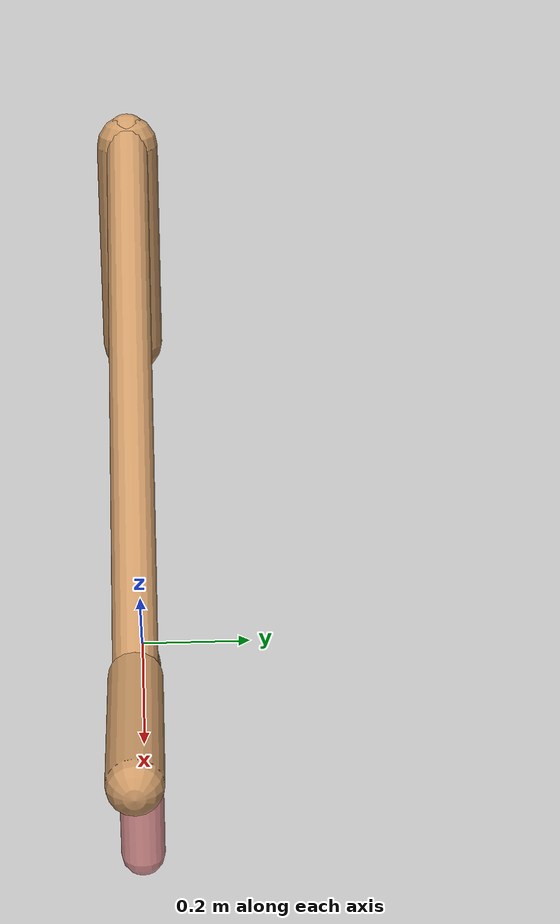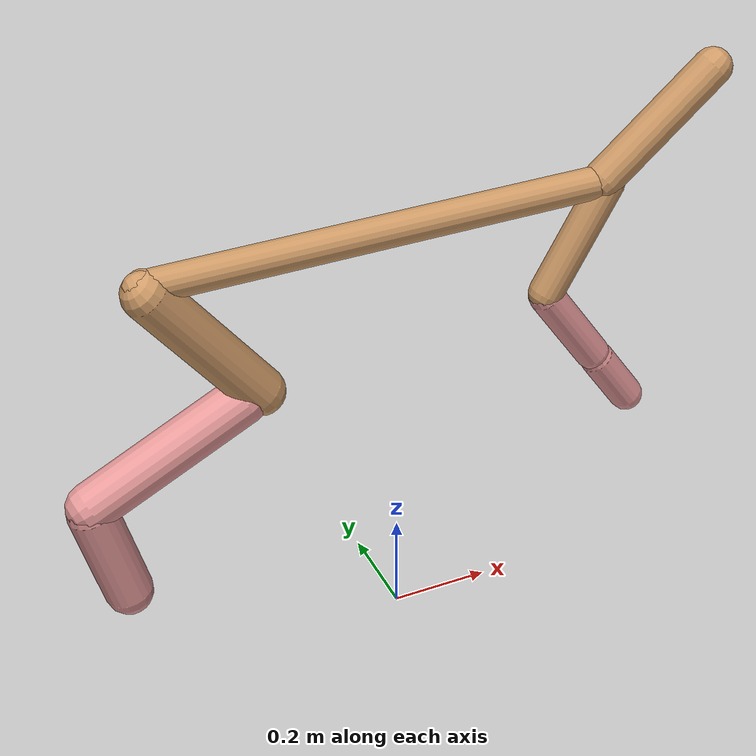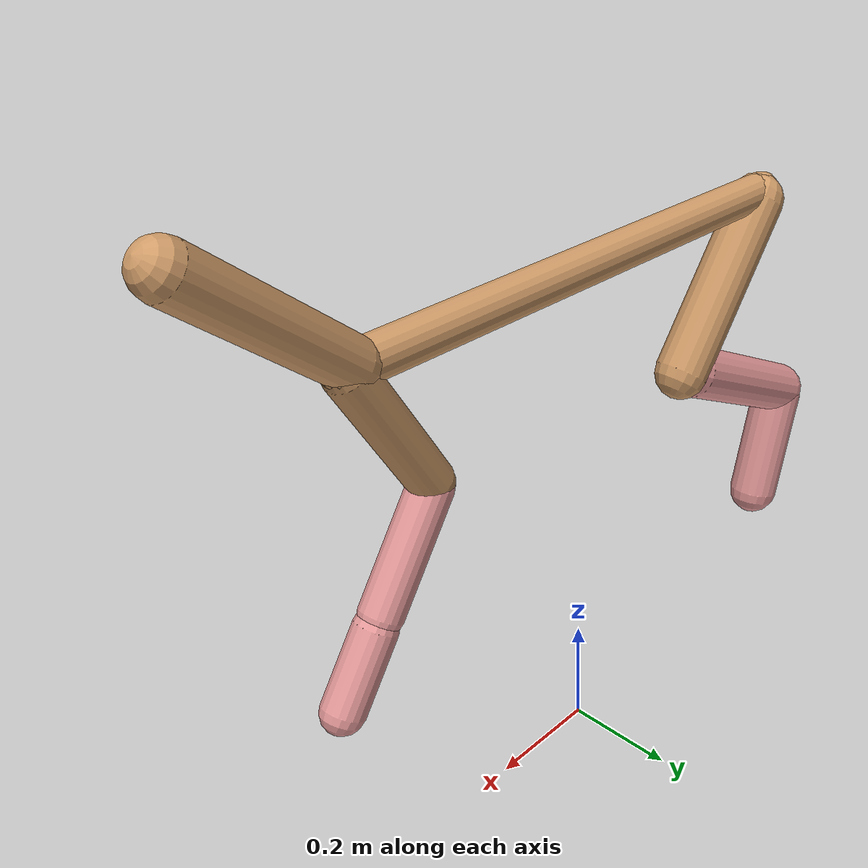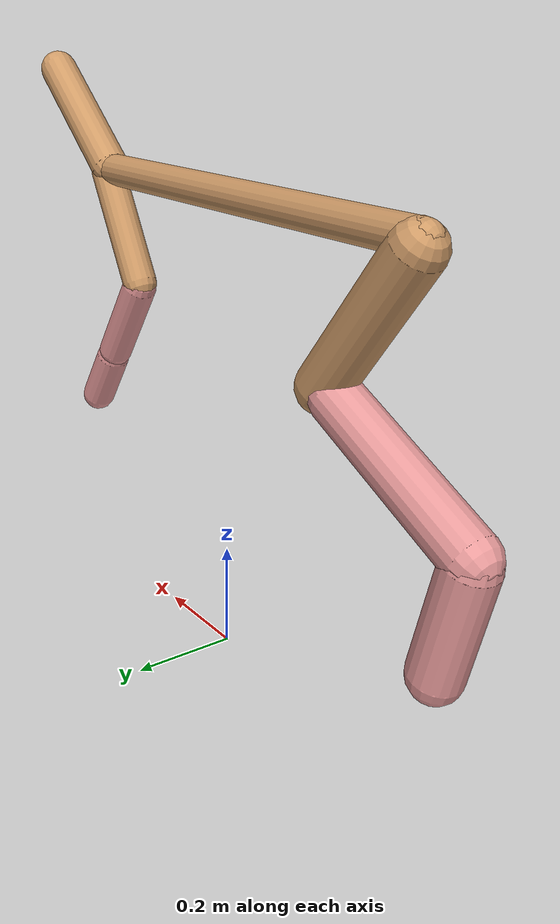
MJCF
<mujoco model="cheetah">
  <compiler angle="radian" coordinate="local" inertiafromgeom="true" settotalmass="14" />
  <default>
    <joint armature=".1" damping=".01" limited="true" solimplimit="0 .8 .03" solreflimit=".02 1" stiffness="8" />
    <geom conaffinity="0" condim="3" contype="1" friction="0.8 .1 .1" rgba="0.8 0.6 .4 1" solimp="0.0 0.8 0.01" solref="0.02 1" />
    <motor ctrllimited="true" ctrlrange="-1 1" />
  </default>
  <size nstack="300000" nuser_geom="1" />
  <option gravity="0 0 -9.81" timestep="0.01" />
  <worldbody>
    <body name="torso" pos="0.0 0.0 0.8975335501984338">
      <joint armature="0" axis="1 0 0" damping="0" limited="false" name="ignorex" pos="0 0 0" stiffness="0" type="slide" />
      <joint armature="0" axis="0 0 1" damping="0" limited="false" name="ignorez" pos="0 0 0" stiffness="0" type="slide" />
      <joint armature="0" axis="0 1 0" damping="0" limited="false" name="ignorey" pos="0 0 0" stiffness="0" type="hinge" />
      <geom fromto="-0.5 0.0 0.0 0.45405536673846464 0.0 0.0" name="torso" size="0.032540677985012804" type="capsule" />
      <geom axisangle="0 1 0 .87" name="head" pos="0.5540553667384646 0.0 0.1" size="0.03894961363893104 0.15" type="capsule" />

      <body name="bthigh" pos="-.5 0 0">
        <joint axis="0 1 0" damping="6" name="bthigh" pos="0 0 0" range="-.52 1.05" stiffness="240" type="hinge" />
        <geom axisangle="0 1 0 -3.8" name="bthigh" pos="0.11479962544220346 0.0 -0.1492395130748645" size="0.04845481406977002 0.1692731904904855" type="capsule" />
        <body name="bshin" pos="0.1895992508844069 0.0 -0.288479026149729">
          <joint axis="0 1 0" damping="4.5" name="bshin" pos="0 0 0" range="-.785 .785" stiffness="180" type="hinge" />
          <geom axisangle="0 1 0 -2.03" name="bshin" pos="-0.1624592430210457 0.0 -0.08122962151052285" rgba="0.9 0.6 0.6 1" size="0.04845481406977002 0.17511019705912295" type="capsule" />
          <body name="bfoot" pos="-0.3249184860420914 0.0 -0.1624592430210457">
            <joint axis="0 1 0" damping="3" name="bfoot" pos="0 0 0" range="-.4 .785" stiffness="120" type="hinge" />
            <geom axisangle="0 1 0 -.27" name="bfoot" pos="0.034649429859681946 0.0 -0.11203315654630497" rgba="0.9 0.6 0.6 1" size="0.04845481406977002 0.10973572349038371" type="capsule" />
            <inertial mass="10" />
          </body>
        </body>
      </body>
      <body name="fthigh" pos="0.4540553667384646 0.0 0.0">
        <joint axis="0 1 0" damping="4.5" name="fthigh" pos="0 0 0" range="-1.5 0.8" stiffness="180" type="hinge" />
        <geom axisangle="0 1 0 .52" name="fthigh" pos="-0.06704527422551895 0.0 -0.11493475581517533" size="0.03518304807673775 0.12713594823911975" type="capsule" />
        <body name="fshin" pos="-0.1340905484510379 0.0 -0.22986951163035066">
          <joint axis="0 1 0" damping="3" name="fshin" pos="0 0 0" range="-1.2 1.1" stiffness="120" type="hinge" />
          <geom axisangle="0 1 0 -.6" name="fshin" pos="0.06226364832477838 0.0 -0.08621120537277006" rgba="0.9 0.6 0.6 1" size="0.03518304807673775 0.10132639483719318" type="capsule" />
          <body name="ffoot" pos="0.12452729664955677 0.0 -0.17242241074554013">
            <joint axis="0 1 0" damping="1.5" name="ffoot" pos="0 0 0" range="-3.1 -0.3" stiffness="60" type="hinge" />
            <geom axisangle="0 1 0 -.6" name="ffoot" pos="0.04333103657602564 0.0 -0.06740383467381766" rgba="0.9 0.6 0.6 1" size="0.03518304807673775 0.06691365696795777" type="capsule" />
            <inertial mass="10" />
          </body>
        </body>
      </body>
    </body>
  </worldbody>
  <actuator>
    <motor gear="120" joint="bthigh" name="bthigh" />
    <motor gear="90" joint="bshin" name="bshin" />
    <motor gear="60" joint="bfoot" name="bfoot" />
    <motor gear="120" joint="fthigh" name="fthigh" />
    <motor gear="60" joint="fshin" name="fshin" />
    <motor gear="30" joint="ffoot" name="ffoot" />
  </actuator>
</mujoco>
